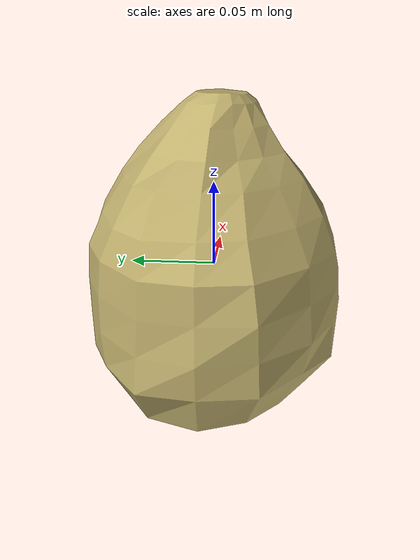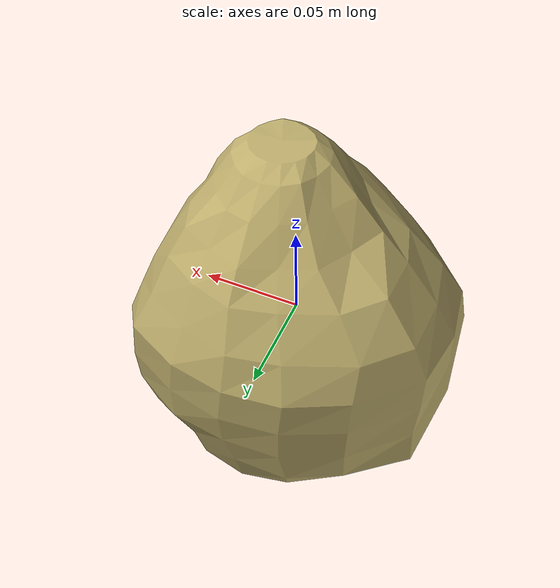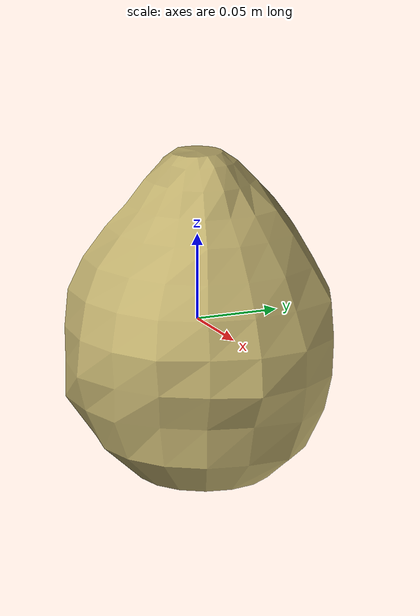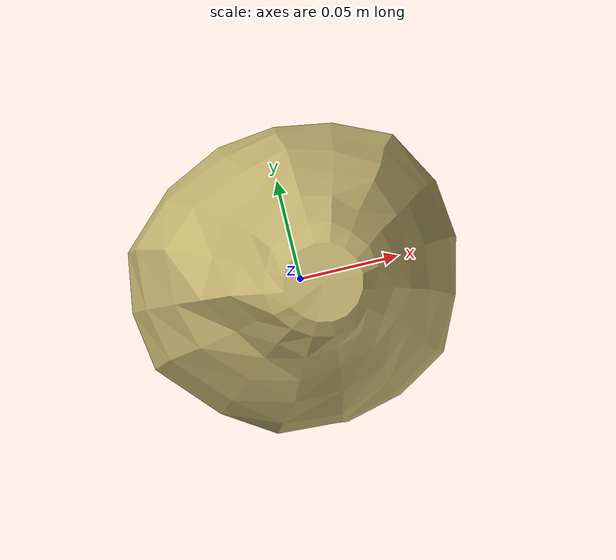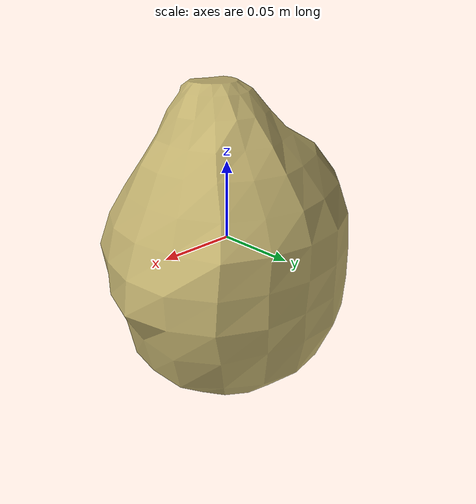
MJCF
<mujoco model="Lettuce_22">
  <compiler autolimits="true" boundmass="0.01" angle="radian"/>
  <default>
    <default class="/">
      <default class="__VISUAL_MJT__">
        <geom contype="0" conaffinity="0" group="0"/>
      </default>
      <default class="__STRUCTURAL_MJT__">
        <geom contype="8" conaffinity="15" group="4" friction="0.90000000000000002 0.90000000000000002 0.001" solref="0.025000000000000001 1" solimp="0.998 0.998 0.001"/>
      </default>
      <default class="__DYNAMIC_MJT__">
        <geom contype="1" conaffinity="15" group="4" friction="0.90000000000000002 0.90000000000000002 0.001" solref="0.025000000000000001 1" solimp="0.998 0.998 0.001"/>
      </default>
    </default>
  </default>
  <asset>
    <texture name="Lettuce3_Mat" type="2d" file="Lettuce3_AlbedoTransparency.png"/>
    <material name="material_Lettuce3_Mat" class="/" texture="Lettuce3_Mat" specular="0.5" shininess="0.5" rgba="1 0.95246359999999997 0.62735850000000004 1"/>
    <mesh name="Lettuce_22_lettuce_c2" class="/" file="Lettuce_22_lettuce_c2/Lettuce_22_lettuce_c2.obj" scale="1 1 1"/>
  </asset>
  <worldbody>
    <body name="Lettuce_22">
      <joint name="Lettuce_22_free" class="/" type="free" pos="0 0 0" axis="0 0 1" stiffness="0" range="0 0" armature="0" damping="0.10000000000000001" frictionloss="0"/>
      <body name="Lettuce_22_lettuce_c2" pos="-0.00025000000000000001 -0.00084000000000000003 -0.00093000000000000005" quat="1 0 0 0">
        <geom name="Lettuce_22_lettuce_c2" class="__VISUAL_MJT__" type="mesh" material="material_Lettuce3_Mat" shellinertia="true" mesh="Lettuce_22_lettuce_c2"/>
        <geom name="Lettuce_22_PrimitiveCollider_0" class="__DYNAMIC_MJT__" type="capsule" size="0.077105700969696045 0.013152956962585449" rgba="0 1 0 1" pos="-0.00024785846471786499 0.00084472866728901863 -0.010900802910327911" quat="0.99999999999891198 1.4751396607739272e-06 0 0"/>
        <geom name="Lettuce_22_PrimitiveCollider_1" class="__DYNAMIC_MJT__" type="capsule" size="0.044527396559715271 1.0000000000000001e-05" rgba="0 1 0 1" pos="0.0023621656000614166 -0.0014896020293235779 0.058492422103881836" quat="0.99999999999891198 1.4751396607739272e-06 0 0"/>
      </body>
    </body>
  </worldbody>
</mujoco>
